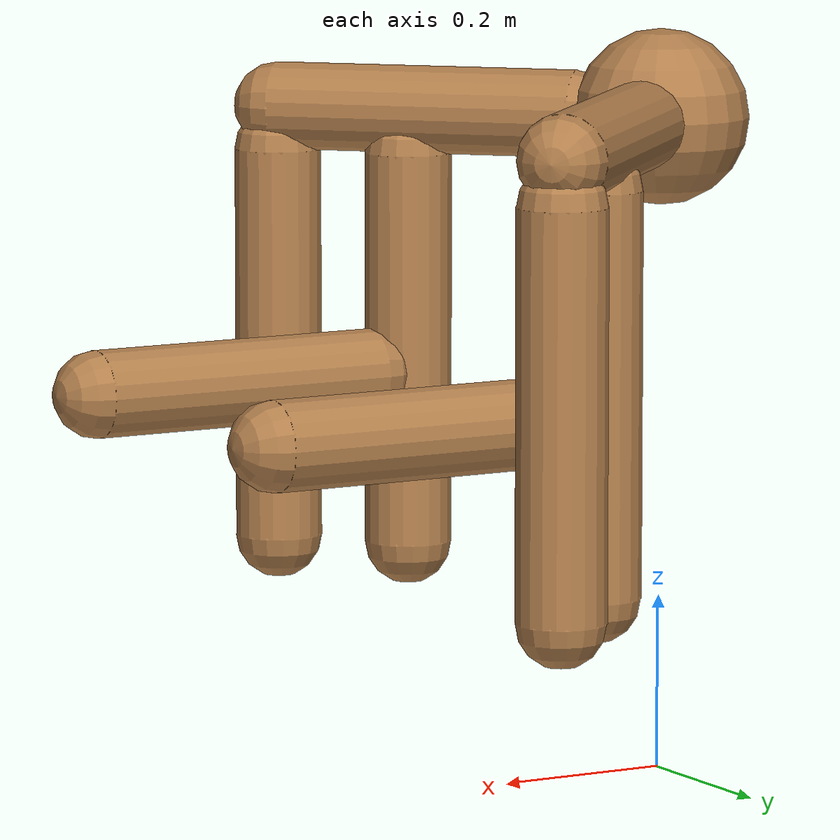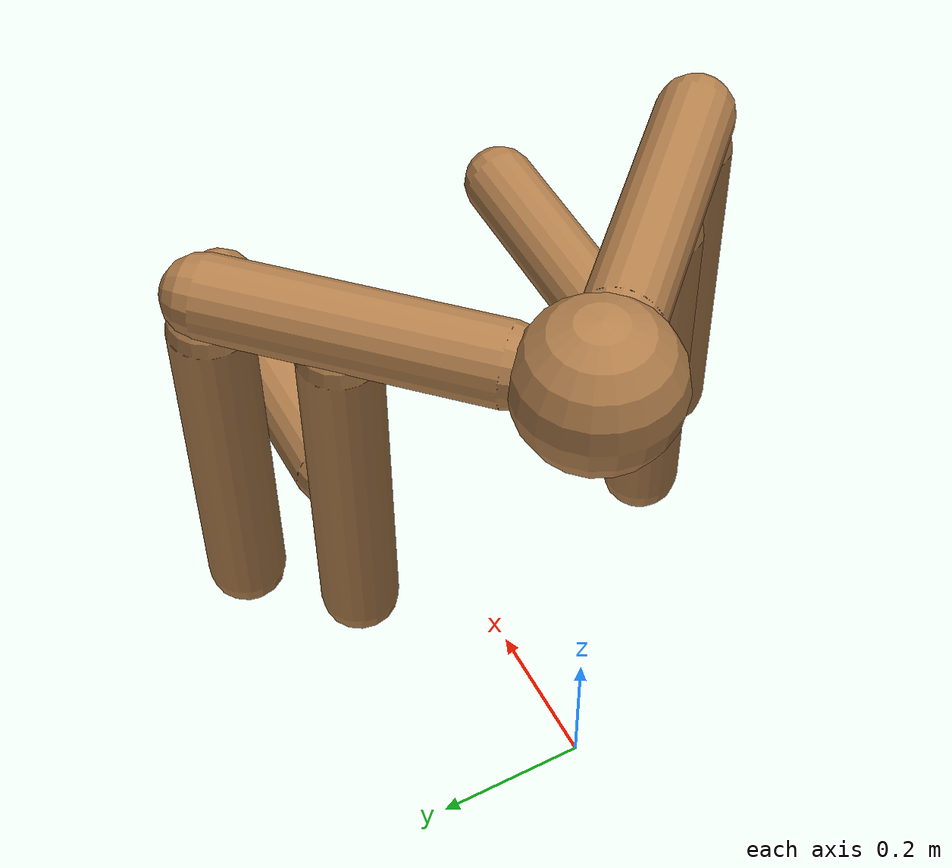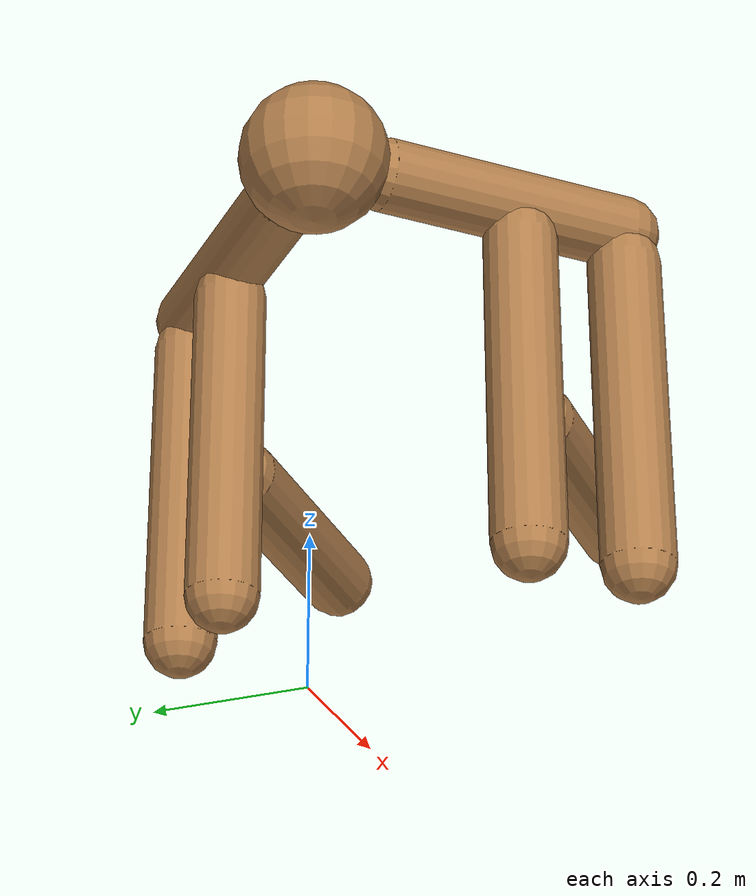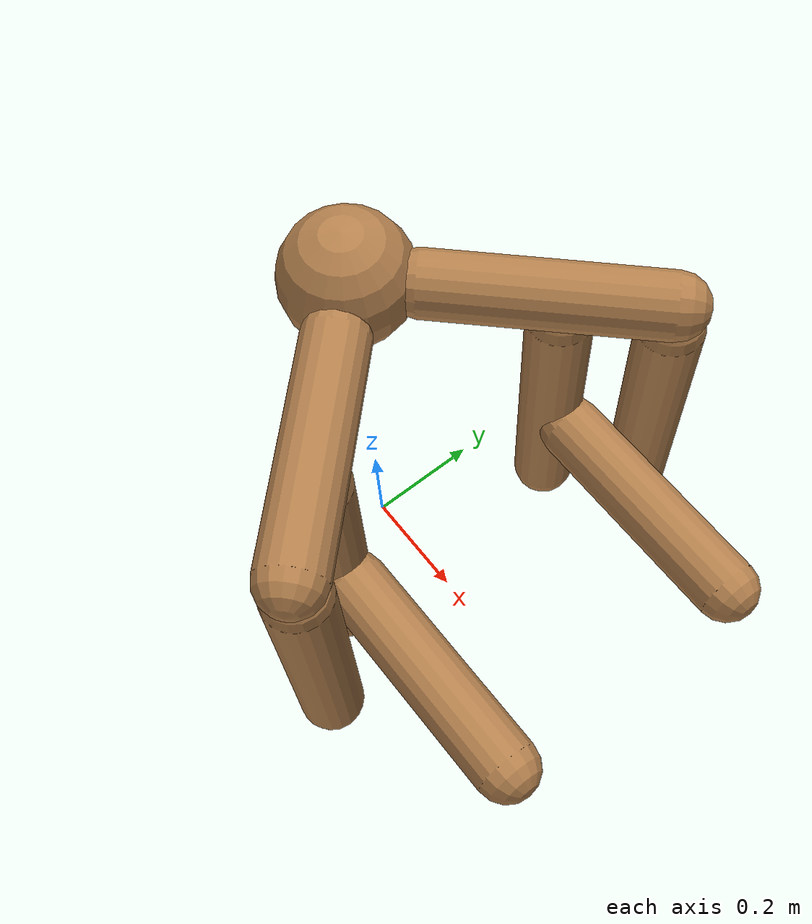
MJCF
<?xml version='1.0' encoding='UTF-8'?>
<!-- Universal Animal Template: unimal -->
<mujoco model="unimal">
  <compiler angle="degree"/>
  <size njmax="2000" nconmax="500"/>
  <option timestep=".005">
    <flag filterparent="disable"/>
  </option>
  <!-- Common defaults to make search space tractable -->
  <default>
    <!-- Define motor defaults -->
    <motor ctrlrange="-1 1" ctrllimited="true"/>
    <!-- Define joint defaults -->
    <default class="normal_joint">
      <joint type="hinge" damping="1" stiffness="1" armature="1" limited="true" range="-120 120" solimplimit="0 0.99 0.01"/>
    </default>
    <default class="walker_joint">
      <joint type="hinge" damping="0.2" stiffness="1" armature=".01" limited="true" range="-120 120" solimplimit="0 0.99 0.01"/>
    </default>
    <default class="stiff_joint">
      <joint type="hinge" damping="5" stiffness="10" armature=".01" limited="true" solimplimit="0 0.99 0.01"/>
    </default>
    <default class="free">
      <joint limited="false" damping="0" armature="0" stiffness="0"/>
    </default>
    <default class="growth_site">
      <site size="1e-6 1e-6 1e-6"/>
    </default>
    <default class="torso_growth_site">
      <site size="1e-6 1e-6 1e-6"/>
    </default>
    <default class="mirror_growth_site">
      <site size="1e-6 1e-6 1e-6"/>
    </default>
    <default class="btm_pos_site">
      <site size="1e-6 1e-6 1e-6"/>
    </default>
    <default class="box_face_site">
      <site size="1e-6 1e-6 1e-6"/>
    </default>
    <default class="imu_vel">
      <site type="box" size="0.05" rgba="1 0 0 0"/>
    </default>
    <default class="touch_site">
      <site group="3" rgba="0 0 1 .3"/>
    </default>
    <default class="food_site">
      <site material="food" size="0.15"/>
    </default>
    <!-- Define geom defaults -->
    <geom type="capsule" condim="3" friction="0.7 0.1 0.1" material="self"/>
  </default>
  <worldbody>
    <light diffuse="1 1 1" directional="true" exponent="1" pos="0 0 8" specular="0.1 0.1 0.1" dir="0 0 -1"/>
    <!-- Programatically generated xml goes here -->
    <body name="torso/0" pos="0 0 0.75">
      <joint name="root" type="free" class="free"/>
      <site name="root" class="imu_vel"/>
      <geom name="torso/0" type="sphere" size="0.1" condim="3" density="900"/>
      <camera name="side" pos="0 -7 2" xyaxes="1 0 0 0 1 2" mode="trackcom"/>
      <site name="torso/0" class="growth_site" pos="0 0 0"/>
      <site name="torso/btm_pos/0" class="btm_pos_site" pos="0 0 -0.1"/>
      <site name="torso/touch/0" class="touch_site" size="0.11"/>
      <site name="torso/horizontal_y/0" class="torso_growth_site" pos="-0.1 0 0"/>
      <body name="limb/4" pos="0.07 0.07 0.0">
        <joint name="limby/4" type="hinge" class="normal_joint" range="0 30" pos="-0.04 -0.04 0.0" axis="-0.5 0.5 0.7071"/>
        <geom name="limb/4" type="capsule" fromto="0.0 0.0 0.0 0.25 0.25 0.0" size="0.05" density="500"/>
        <site name="limb/mid/4" class="mirror_growth_site" pos="0.14 0.14 0.0"/>
        <site name="limb/btm/4" class="mirror_growth_site" pos="0.25 0.25 0.0"/>
        <site name="limb/btm_pos/4" class="btm_pos_site" pos="0.28 0.28 0.0"/>
        <site name="limb/touch/4" class="touch_site" size="0.060000000000000005" fromto="0.0 0.0 0.0 0.25 0.25 0.0" type="capsule"/>
        <body name="limb/12" pos="0.14 0.14 -0.05">
          <joint name="limby/12" type="hinge" class="normal_joint" range="0 30" pos="0.0 0.0 0.05" axis="0.0 1.0 0.0"/>
          <geom name="limb/12" type="capsule" fromto="0.0 0.0 0.0 0.0 0.0 -0.45" size="0.05" density="500"/>
          <site name="limb/mid/12" class="mirror_growth_site" pos="0.0 0.0 -0.25"/>
          <site name="limb/btm/12" class="mirror_growth_site" pos="0.0 0.0 -0.45"/>
          <site name="limb/btm_pos/12" class="btm_pos_site" pos="0.0 0.0 -0.5"/>
          <site name="limb/touch/12" class="touch_site" size="0.060000000000000005" fromto="0.0 0.0 0.0 0.0 0.0 -0.45" type="capsule"/>
          <body name="limb/18" pos="0.05 0.0 -0.25">
            <joint name="limbx/18" type="hinge" class="normal_joint" range="-60 60" pos="-0.05 0.0 0.0" axis="0.0 0.0 1.0"/>
            <joint name="limby/18" type="hinge" class="normal_joint" range="-30 60" pos="-0.05 0.0 0.0" axis="-0.0 1.0 0.0"/>
            <geom name="limb/18" type="capsule" fromto="0.0 0.0 0.0 0.35 0.0 0.0" size="0.05" density="500"/>
            <site name="limb/mid/18" class="mirror_growth_site" pos="0.2 0.0 0.0"/>
            <site name="limb/btm/18" class="mirror_growth_site" pos="0.35 0.0 0.0"/>
            <site name="limb/btm_pos/18" class="btm_pos_site" pos="0.4 0.0 0.0"/>
            <site name="limb/touch/18" class="touch_site" size="0.060000000000000005" fromto="0.0 0.0 0.0 0.35 0.0 0.0" type="capsule"/>
          </body>
        </body>
        <body name="limb/16" pos="0.25 0.25 -0.05">
          <joint name="limby/16" type="hinge" class="normal_joint" range="-90 0" pos="0.0 0.0 0.05" axis="0.0 1.0 0.0"/>
          <geom name="limb/16" type="capsule" fromto="0.0 0.0 0.0 0.0 0.0 -0.45" size="0.05" density="500"/>
          <site name="limb/mid/16" class="mirror_growth_site" pos="0.0 0.0 -0.25"/>
          <site name="limb/btm/16" class="mirror_growth_site" pos="0.0 0.0 -0.45"/>
          <site name="limb/btm_pos/16" class="btm_pos_site" pos="0.0 0.0 -0.5"/>
          <site name="limb/touch/16" class="touch_site" size="0.060000000000000005" fromto="0.0 0.0 0.0 0.0 0.0 -0.45" type="capsule"/>
        </body>
      </body>
      <body name="limb/5" pos="0.07 -0.07 0.0">
        <joint name="limby/5" type="hinge" class="normal_joint" range="0 30" pos="-0.04 0.04 0.0" axis="0.5 0.5 -0.7071"/>
        <geom name="limb/5" type="capsule" fromto="0.0 0.0 0.0 0.25 -0.25 0.0" size="0.05" density="500"/>
        <site name="limb/mid/5" class="mirror_growth_site" pos="0.14 -0.14 0.0"/>
        <site name="limb/btm/5" class="mirror_growth_site" pos="0.25 -0.25 0.0"/>
        <site name="limb/btm_pos/5" class="btm_pos_site" pos="0.28 -0.28 0.0"/>
        <site name="limb/touch/5" class="touch_site" size="0.060000000000000005" fromto="0.0 0.0 0.0 0.25 -0.25 0.0" type="capsule"/>
        <body name="limb/13" pos="0.14 -0.14 -0.05">
          <joint name="limby/13" type="hinge" class="normal_joint" range="0 30" pos="0.0 0.0 0.05" axis="0.0 1.0 0.0"/>
          <geom name="limb/13" type="capsule" fromto="0.0 0.0 0.0 0.0 0.0 -0.45" size="0.05" density="500"/>
          <site name="limb/mid/13" class="mirror_growth_site" pos="0.0 0.0 -0.25"/>
          <site name="limb/btm/13" class="mirror_growth_site" pos="0.0 0.0 -0.45"/>
          <site name="limb/btm_pos/13" class="btm_pos_site" pos="0.0 0.0 -0.5"/>
          <site name="limb/touch/13" class="touch_site" size="0.060000000000000005" fromto="0.0 0.0 0.0 0.0 0.0 -0.45" type="capsule"/>
          <body name="limb/19" pos="0.05 0.0 -0.25">
            <joint name="limbx/19" type="hinge" class="normal_joint" range="-60 60" pos="-0.05 0.0 0.0" axis="0.0 0.0 1.0"/>
            <joint name="limby/19" type="hinge" class="normal_joint" range="-30 60" pos="-0.05 0.0 0.0" axis="-0.0 1.0 0.0"/>
            <geom name="limb/19" type="capsule" fromto="0.0 0.0 0.0 0.35 0.0 0.0" size="0.05" density="500"/>
            <site name="limb/mid/19" class="mirror_growth_site" pos="0.2 0.0 0.0"/>
            <site name="limb/btm/19" class="mirror_growth_site" pos="0.35 0.0 0.0"/>
            <site name="limb/btm_pos/19" class="btm_pos_site" pos="0.4 0.0 0.0"/>
            <site name="limb/touch/19" class="touch_site" size="0.060000000000000005" fromto="0.0 0.0 0.0 0.35 0.0 0.0" type="capsule"/>
          </body>
        </body>
        <body name="limb/17" pos="0.25 -0.25 -0.05">
          <joint name="limby/17" type="hinge" class="normal_joint" range="-90 0" pos="0.0 0.0 0.05" axis="0.0 1.0 0.0"/>
          <geom name="limb/17" type="capsule" fromto="0.0 0.0 0.0 0.0 0.0 -0.45" size="0.05" density="500"/>
          <site name="limb/mid/17" class="mirror_growth_site" pos="0.0 0.0 -0.25"/>
          <site name="limb/btm/17" class="mirror_growth_site" pos="0.0 0.0 -0.45"/>
          <site name="limb/btm_pos/17" class="btm_pos_site" pos="0.0 0.0 -0.5"/>
          <site name="limb/touch/17" class="touch_site" size="0.060000000000000005" fromto="0.0 0.0 0.0 0.0 0.0 -0.45" type="capsule"/>
        </body>
      </body>
    </body>
  </worldbody>
  <actuator>
    <motor joint="limby/4" gear="300" name="limby/4"/>
    <motor joint="limby/12" gear="300" name="limby/12"/>
    <motor joint="limbx/18" gear="200" name="limbx/18"/>
    <motor joint="limby/18" gear="250" name="limby/18"/>
    <motor joint="limby/16" gear="150" name="limby/16"/>
    <motor joint="limby/5" gear="300" name="limby/5"/>
    <motor joint="limby/13" gear="300" name="limby/13"/>
    <motor joint="limbx/19" gear="200" name="limbx/19"/>
    <motor joint="limby/19" gear="250" name="limby/19"/>
    <motor joint="limby/17" gear="150" name="limby/17"/>
  </actuator>
  <sensor>
    <accelerometer name="torso_accel" site="root"/>
    <gyro name="torso_gyro" site="root"/>
    <velocimeter name="torso_vel" site="root"/>
    <subtreeangmom name="unimal_am" body="torso/0"/>
    <touch name="torso/0" site="torso/touch/0"/>
    <touch name="limb/4" site="limb/touch/4"/>
    <touch name="limb/12" site="limb/touch/12"/>
    <touch name="limb/18" site="limb/touch/18"/>
    <touch name="limb/16" site="limb/touch/16"/>
    <touch name="limb/5" site="limb/touch/5"/>
    <touch name="limb/13" site="limb/touch/13"/>
    <touch name="limb/19" site="limb/touch/19"/>
    <touch name="limb/17" site="limb/touch/17"/>
  </sensor>
  <!-- Add hfield assets -->
  <asset/>
  <!-- List of contacts to exclude -->
  <contact/>
  <!-- Define material, texture etc -->
  <asset>
    <material name="grid" texture="grid" texrepeat="1 1" texuniform="true" reflectance="0.1"/>
    <material name="hfield" texture="hfield" texrepeat="1 1" texuniform="true" reflectance="0.1"/>
    <material name="wall" texture="wall" texrepeat="1 1" texuniform="true" reflectance=".5"/>
    <material name="platform" texture="platform" texrepeat="1 1" texuniform="true" reflectance=".5"/>
    <material name="boundary" texture="boundary" texrepeat="1 1" texuniform="true" reflectance=".5"/>
    <material name="jump" texture="jump" texrepeat="1 1" texuniform="true" reflectance=".5"/>
    <material name="goal" rgba="1 0 0 1"/>
    <material name="food" rgba="0 0 1 1" emission="1"/>
    <material name="init_position" rgba="0 1 0 0.7"/>
    <material name="self" rgba=".7 .5 .3 1"/>
    <material name="self_invisible" rgba=".7 .5 .3 0"/>
    <material name="self_default" rgba=".7 .5 .3 1"/>
    <material name="self_highlight" rgba="0 .5 .3 1"/>
    <material name="effector" rgba=".7 .4 .2 1"/>
    <material name="effector_default" rgba=".7 .4 .2 1"/>
    <material name="effector_highlight" rgba="0 .5 .3 1"/>
    <material name="decoration" rgba=".3 .5 .7 1"/>
    <material name="eye" rgba="0 .2 1 1"/>
    <material name="target" rgba=".6 .3 .3 1"/>
    <material name="target_default" rgba=".6 .3 .3 1"/>
    <material name="target_highlight" rgba=".6 .3 .3 .4"/>
    <material name="site" rgba=".5 .5 .5 .3"/>
    <material name="ball" texture="ball"/>
  </asset>
  <asset>
    <texture name="grid" type="2d" builtin="checker" rgb1="0.4 0.4 0.4" rgb2="0.4 0.4 0.4" width="300" height="300" mark="edge" markrgb="0.2 0.2 0.2"/>
    <texture name="hfield" type="2d" builtin="checker" rgb1="0.4 0.4 0.4" rgb2="0.4 0.4 0.4" width="300" height="300" mark="edge" markrgb="0.2 0.2 0.2"/>
    <texture name="wall" type="2d" builtin="flat" rgb1="0.9 0.7 0" rgb2="0.9 0.7 0" width="300" height="300"/>
    <texture name="platform" type="2d" builtin="flat" rgb1="0.3 0 0.8" rgb2="0.3 0 0.8" width="300" height="300"/>
    <texture name="boundary" type="2d" builtin="flat" rgb1="0.3 0.3 0.3" rgb2="0.3 0.3 0.3" width="300" height="300"/>
    <texture name="jump" type="2d" builtin="flat" rgb1="0.3 0.3 0.3" rgb2="0.3 0.3 0.3" width="300" height="300"/>
    <texture name="skybox" type="skybox" builtin="gradient" rgb1="1 1 1" rgb2="0.6 0.6 0.6" width="800" height="800"/>
    <texture name="ball" builtin="checker" mark="cross" width="151" height="151" rgb1="0.1 0.1 0.1" rgb2="0.9 0.9 0.9" markrgb="1 1 1"/>
  </asset>
  <visual>
    <headlight ambient="0.6 0.6 0.6" diffuse="0.3 0.3 0.3" specular="0 0 0"/>
    <map znear=".01" shadowclip="0.5"/>
    <quality shadowsize="16384"/>
  </visual>
</mujoco>
